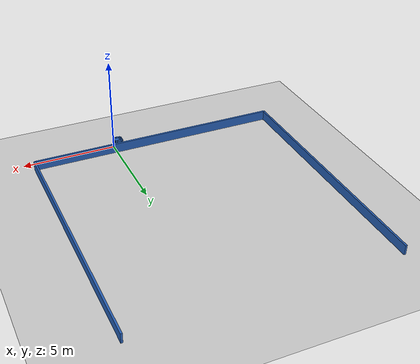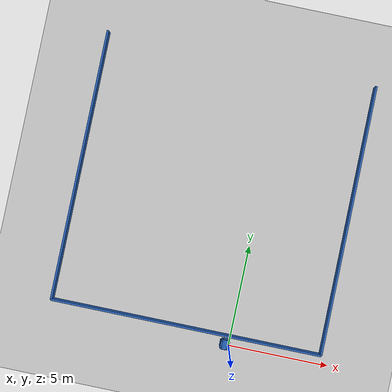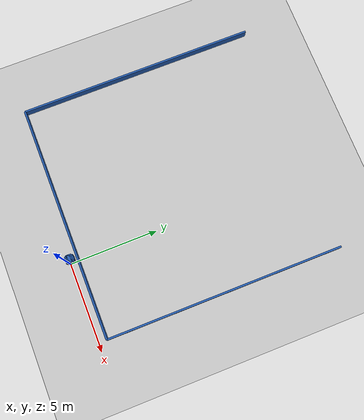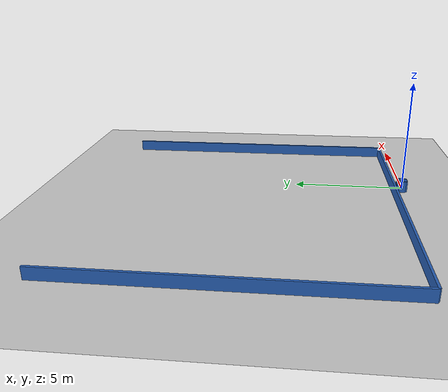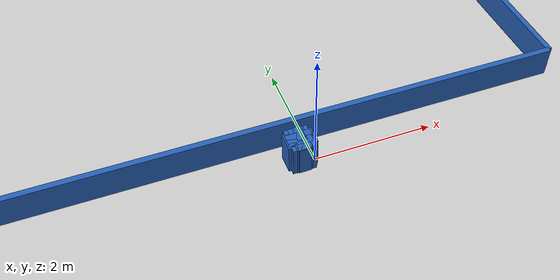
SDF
<?xml version="1.0" ?>
    <sdf version="1.5">
      <world name="default">
        <!-- A global light source -->
        <include>
          <uri>model://sun</uri>
        </include>
        <!-- A ground plane -->
        <include>
          <uri>model://ground_plane</uri>
        </include>

    <model name='libopen_space_final_T2B_96_0'>
      <static>1</static>
      <pose frame=''>-0.225000 0.075000 0.000000 0.000000 0.000000 0.000000</pose>
      <link name='link'>
        <inertial>
          <mass>1</mass>
          <inertia>
            <ixx>0.145833</ixx>
            <ixy>0</ixy>
            <ixz>0</ixz>
            <iyy>0.145833</iyy>
            <iyz>0</iyz>
            <izz>0.125</izz>
          </inertia>
        </inertial>
        <collision name='collision'>
          <geometry>
            <box>
              <size>0.19 0.30 1</size>
            </box>
          </geometry>
          <max_contacts>10</max_contacts>
          <surface>
            <contact>
              <ode/>
            </contact>
            <bounce/>
            <friction>
              <torsional>
                <ode/>
              </torsional>
              <ode/>
            </friction>
          </surface>
        </collision>
        <visual name='visual'>
          <geometry>
            <box>
              <size>0.19 0.30 1</size>
            </box>
          </geometry>
	    <material>
              <ambient>0.152000 0.379000 0.720000 1</ambient>
	      <diffuse>0.152000 0.379000 0.720000 1</diffuse>
          </material>
          <material>
            <script>
              <name>Gazebo/Grey</name>
              <uri>file://media/materials/scripts/gazebo.material</uri>
            </script>
          </material>
        </visual>
        <self_collide>0</self_collide>
        <kinematic>0</kinematic>
        <gravity>1</gravity>
      </link>
      <plugin name='libopen_space_final_T2B_96_0' filename='libopen_space_final_T2B_96_0.so'/>
    </model>

    <model name='libopen_space_final_T2B_83_17'>
      <static>1</static>
      <pose frame=''>-0.225000 0.075000 0.000000 0.000000 0.000000 0.000000</pose>
      <link name='link'>
        <inertial>
          <mass>1</mass>
          <inertia>
            <ixx>0.145833</ixx>
            <ixy>0</ixy>
            <ixz>0</ixz>
            <iyy>0.145833</iyy>
            <iyz>0</iyz>
            <izz>0.125</izz>
          </inertia>
        </inertial>
        <collision name='collision'>
          <geometry>
            <box>
              <size>0.39 0.46 1</size>
            </box>
          </geometry>
          <max_contacts>10</max_contacts>
          <surface>
            <contact>
              <ode/>
            </contact>
            <bounce/>
            <friction>
              <torsional>
                <ode/>
              </torsional>
              <ode/>
            </friction>
          </surface>
        </collision>
        <visual name='visual'>
          <geometry>
            <box>
              <size>0.39 0.46 1</size>
            </box>
          </geometry>
	    <material>
              <ambient>0.152000 0.379000 0.720000 1</ambient>
	      <diffuse>0.152000 0.379000 0.720000 1</diffuse>
          </material>
          <material>
            <script>
              <name>Gazebo/Grey</name>
              <uri>file://media/materials/scripts/gazebo.material</uri>
            </script>
          </material>
        </visual>
        <self_collide>0</self_collide>
        <kinematic>0</kinematic>
        <gravity>1</gravity>
      </link>
      <plugin name='libopen_space_final_T2B_83_17' filename='libopen_space_final_T2B_83_17.so'/>
    </model>

    <model name='libopen_space_final_T2B_120_90'>
      <static>1</static>
      <pose frame=''>-0.225000 0.075000 0.000000 0.000000 0.000000 0.000000</pose>
      <link name='link'>
        <inertial>
          <mass>1</mass>
          <inertia>
            <ixx>0.145833</ixx>
            <ixy>0</ixy>
            <ixz>0</ixz>
            <iyy>0.145833</iyy>
            <iyz>0</iyz>
            <izz>0.125</izz>
          </inertia>
        </inertial>
        <collision name='collision'>
          <geometry>
            <box>
              <size>0.40 0.16 1</size>
            </box>
          </geometry>
          <max_contacts>10</max_contacts>
          <surface>
            <contact>
              <ode/>
            </contact>
            <bounce/>
            <friction>
              <torsional>
                <ode/>
              </torsional>
              <ode/>
            </friction>
          </surface>
        </collision>
        <visual name='visual'>
          <geometry>
            <box>
              <size>0.40 0.16 1</size>
            </box>
          </geometry>
	    <material>
              <ambient>0.152000 0.379000 0.720000 1</ambient>
	      <diffuse>0.152000 0.379000 0.720000 1</diffuse>
          </material>
          <material>
            <script>
              <name>Gazebo/Grey</name>
              <uri>file://media/materials/scripts/gazebo.material</uri>
            </script>
          </material>
        </visual>
        <self_collide>0</self_collide>
        <kinematic>0</kinematic>
        <gravity>1</gravity>
      </link>
      <plugin name='libopen_space_final_T2B_120_90' filename='libopen_space_final_T2B_120_90.so'/>
    </model>

    <model name='libopen_space_final_T2B_79_93'>
      <static>1</static>
      <pose frame=''>-0.225000 0.075000 0.000000 0.000000 0.000000 0.000000</pose>
      <link name='link'>
        <inertial>
          <mass>1</mass>
          <inertia>
            <ixx>0.145833</ixx>
            <ixy>0</ixy>
            <ixz>0</ixz>
            <iyy>0.145833</iyy>
            <iyz>0</iyz>
            <izz>0.125</izz>
          </inertia>
        </inertial>
        <collision name='collision'>
          <geometry>
            <box>
              <size>0.43 0.11 1</size>
            </box>
          </geometry>
          <max_contacts>10</max_contacts>
          <surface>
            <contact>
              <ode/>
            </contact>
            <bounce/>
            <friction>
              <torsional>
                <ode/>
              </torsional>
              <ode/>
            </friction>
          </surface>
        </collision>
        <visual name='visual'>
          <geometry>
            <box>
              <size>0.43 0.11 1</size>
            </box>
          </geometry>
	    <material>
              <ambient>0.152000 0.379000 0.720000 1</ambient>
	      <diffuse>0.152000 0.379000 0.720000 1</diffuse>
          </material>
          <material>
            <script>
              <name>Gazebo/Grey</name>
              <uri>file://media/materials/scripts/gazebo.material</uri>
            </script>
          </material>
        </visual>
        <self_collide>0</self_collide>
        <kinematic>0</kinematic>
        <gravity>1</gravity>
      </link>
      <plugin name='libopen_space_final_T2B_79_93' filename='libopen_space_final_T2B_79_93.so'/>
    </model>

    <model name='libopen_space_final_T2B_90_15'>
      <static>1</static>
      <pose frame=''>-0.225000 0.075000 0.000000 0.000000 0.000000 0.000000</pose>
      <link name='link'>
        <inertial>
          <mass>1</mass>
          <inertia>
            <ixx>0.145833</ixx>
            <ixy>0</ixy>
            <ixz>0</ixz>
            <iyy>0.145833</iyy>
            <iyz>0</iyz>
            <izz>0.125</izz>
          </inertia>
        </inertial>
        <collision name='collision'>
          <geometry>
            <box>
              <size>0.48 0.31 1</size>
            </box>
          </geometry>
          <max_contacts>10</max_contacts>
          <surface>
            <contact>
              <ode/>
            </contact>
            <bounce/>
            <friction>
              <torsional>
                <ode/>
              </torsional>
              <ode/>
            </friction>
          </surface>
        </collision>
        <visual name='visual'>
          <geometry>
            <box>
              <size>0.48 0.31 1</size>
            </box>
          </geometry>
	    <material>
              <ambient>0.152000 0.379000 0.720000 1</ambient>
	      <diffuse>0.152000 0.379000 0.720000 1</diffuse>
          </material>
          <material>
            <script>
              <name>Gazebo/Grey</name>
              <uri>file://media/materials/scripts/gazebo.material</uri>
            </script>
          </material>
        </visual>
        <self_collide>0</self_collide>
        <kinematic>0</kinematic>
        <gravity>1</gravity>
      </link>
      <plugin name='libopen_space_final_T2B_90_15' filename='libopen_space_final_T2B_90_15.so'/>
    </model>

    <model name='libopen_space_final_T2B_115_24'>
      <static>1</static>
      <pose frame=''>-0.225000 0.075000 0.000000 0.000000 0.000000 0.000000</pose>
      <link name='link'>
        <inertial>
          <mass>1</mass>
          <inertia>
            <ixx>0.145833</ixx>
            <ixy>0</ixy>
            <ixz>0</ixz>
            <iyy>0.145833</iyy>
            <iyz>0</iyz>
            <izz>0.125</izz>
          </inertia>
        </inertial>
        <collision name='collision'>
          <geometry>
            <box>
              <size>0.42 0.25 1</size>
            </box>
          </geometry>
          <max_contacts>10</max_contacts>
          <surface>
            <contact>
              <ode/>
            </contact>
            <bounce/>
            <friction>
              <torsional>
                <ode/>
              </torsional>
              <ode/>
            </friction>
          </surface>
        </collision>
        <visual name='visual'>
          <geometry>
            <box>
              <size>0.42 0.25 1</size>
            </box>
          </geometry>
	    <material>
              <ambient>0.152000 0.379000 0.720000 1</ambient>
	      <diffuse>0.152000 0.379000 0.720000 1</diffuse>
          </material>
          <material>
            <script>
              <name>Gazebo/Grey</name>
              <uri>file://media/materials/scripts/gazebo.material</uri>
            </script>
          </material>
        </visual>
        <self_collide>0</self_collide>
        <kinematic>0</kinematic>
        <gravity>1</gravity>
      </link>
      <plugin name='libopen_space_final_T2B_115_24' filename='libopen_space_final_T2B_115_24.so'/>
    </model>

    <model name='libopen_space_final_T2B_85_42'>
      <static>1</static>
      <pose frame=''>-0.225000 0.075000 0.000000 0.000000 0.000000 0.000000</pose>
      <link name='link'>
        <inertial>
          <mass>1</mass>
          <inertia>
            <ixx>0.145833</ixx>
            <ixy>0</ixy>
            <ixz>0</ixz>
            <iyy>0.145833</iyy>
            <iyz>0</iyz>
            <izz>0.125</izz>
          </inertia>
        </inertial>
        <collision name='collision'>
          <geometry>
            <box>
              <size>0.25 0.47 1</size>
            </box>
          </geometry>
          <max_contacts>10</max_contacts>
          <surface>
            <contact>
              <ode/>
            </contact>
            <bounce/>
            <friction>
              <torsional>
                <ode/>
              </torsional>
              <ode/>
            </friction>
          </surface>
        </collision>
        <visual name='visual'>
          <geometry>
            <box>
              <size>0.25 0.47 1</size>
            </box>
          </geometry>
	    <material>
              <ambient>0.152000 0.379000 0.720000 1</ambient>
	      <diffuse>0.152000 0.379000 0.720000 1</diffuse>
          </material>
          <material>
            <script>
              <name>Gazebo/Grey</name>
              <uri>file://media/materials/scripts/gazebo.material</uri>
            </script>
          </material>
        </visual>
        <self_collide>0</self_collide>
        <kinematic>0</kinematic>
        <gravity>1</gravity>
      </link>
      <plugin name='libopen_space_final_T2B_85_42' filename='libopen_space_final_T2B_85_42.so'/>
    </model>

    <model name='libopen_space_final_T2B_73_55'>
      <static>1</static>
      <pose frame=''>-0.225000 0.075000 0.000000 0.000000 0.000000 0.000000</pose>
      <link name='link'>
        <inertial>
          <mass>1</mass>
          <inertia>
            <ixx>0.145833</ixx>
            <ixy>0</ixy>
            <ixz>0</ixz>
            <iyy>0.145833</iyy>
            <iyz>0</iyz>
            <izz>0.125</izz>
          </inertia>
        </inertial>
        <collision name='collision'>
          <geometry>
            <box>
              <size>0.37 0.23 1</size>
            </box>
          </geometry>
          <max_contacts>10</max_contacts>
          <surface>
            <contact>
              <ode/>
            </contact>
            <bounce/>
            <friction>
              <torsional>
                <ode/>
              </torsional>
              <ode/>
            </friction>
          </surface>
        </collision>
        <visual name='visual'>
          <geometry>
            <box>
              <size>0.37 0.23 1</size>
            </box>
          </geometry>
	    <material>
              <ambient>0.152000 0.379000 0.720000 1</ambient>
	      <diffuse>0.152000 0.379000 0.720000 1</diffuse>
          </material>
          <material>
            <script>
              <name>Gazebo/Grey</name>
              <uri>file://media/materials/scripts/gazebo.material</uri>
            </script>
          </material>
        </visual>
        <self_collide>0</self_collide>
        <kinematic>0</kinematic>
        <gravity>1</gravity>
      </link>
      <plugin name='libopen_space_final_T2B_73_55' filename='libopen_space_final_T2B_73_55.so'/>
    </model>

    <model name='libopen_space_final_T2B_73_39'>
      <static>1</static>
      <pose frame=''>-0.225000 0.075000 0.000000 0.000000 0.000000 0.000000</pose>
      <link name='link'>
        <inertial>
          <mass>1</mass>
          <inertia>
            <ixx>0.145833</ixx>
            <ixy>0</ixy>
            <ixz>0</ixz>
            <iyy>0.145833</iyy>
            <iyz>0</iyz>
            <izz>0.125</izz>
          </inertia>
        </inertial>
        <collision name='collision'>
          <geometry>
            <box>
              <size>0.42 0.28 1</size>
            </box>
          </geometry>
          <max_contacts>10</max_contacts>
          <surface>
            <contact>
              <ode/>
            </contact>
            <bounce/>
            <friction>
              <torsional>
                <ode/>
              </torsional>
              <ode/>
            </friction>
          </surface>
        </collision>
        <visual name='visual'>
          <geometry>
            <box>
              <size>0.42 0.28 1</size>
            </box>
          </geometry>
	    <material>
              <ambient>0.152000 0.379000 0.720000 1</ambient>
	      <diffuse>0.152000 0.379000 0.720000 1</diffuse>
          </material>
          <material>
            <script>
              <name>Gazebo/Grey</name>
              <uri>file://media/materials/scripts/gazebo.material</uri>
            </script>
          </material>
        </visual>
        <self_collide>0</self_collide>
        <kinematic>0</kinematic>
        <gravity>1</gravity>
      </link>
      <plugin name='libopen_space_final_T2B_73_39' filename='libopen_space_final_T2B_73_39.so'/>
    </model>

    <model name='libopen_space_final_T2B_141_33'>
      <static>1</static>
      <pose frame=''>-0.225000 0.075000 0.000000 0.000000 0.000000 0.000000</pose>
      <link name='link'>
        <inertial>
          <mass>1</mass>
          <inertia>
            <ixx>0.145833</ixx>
            <ixy>0</ixy>
            <ixz>0</ixz>
            <iyy>0.145833</iyy>
            <iyz>0</iyz>
            <izz>0.125</izz>
          </inertia>
        </inertial>
        <collision name='collision'>
          <geometry>
            <box>
              <size>0.20 0.49 1</size>
            </box>
          </geometry>
          <max_contacts>10</max_contacts>
          <surface>
            <contact>
              <ode/>
            </contact>
            <bounce/>
            <friction>
              <torsional>
                <ode/>
              </torsional>
              <ode/>
            </friction>
          </surface>
        </collision>
        <visual name='visual'>
          <geometry>
            <box>
              <size>0.20 0.49 1</size>
            </box>
          </geometry>
	    <material>
              <ambient>0.152000 0.379000 0.720000 1</ambient>
	      <diffuse>0.152000 0.379000 0.720000 1</diffuse>
          </material>
          <material>
            <script>
              <name>Gazebo/Grey</name>
              <uri>file://media/materials/scripts/gazebo.material</uri>
            </script>
          </material>
        </visual>
        <self_collide>0</self_collide>
        <kinematic>0</kinematic>
        <gravity>1</gravity>
      </link>
      <plugin name='libopen_space_final_T2B_141_33' filename='libopen_space_final_T2B_141_33.so'/>
    </model>

        <model name='bottom_wall'>
          <static>1</static>
          <pose frame=''>-2.25 0.5 0.000000 0.000000 0.000000 1.57079632</pose>
          <link name='link'>
            <inertial>
            <mass>1</mass>
            <inertia>
              <ixx>0.145833</ixx>
              <ixy>0</ixy>
              <ixz>0</ixz>
              <iyy>0.145833</iyy>
              <iyz>0</iyz>
              <izz>0.125</izz>
            </inertia>
            </inertial>
            <collision name='collision'>
            <geometry>
              <box>
              <size>0.1 13.5 1</size>
              </box>
            </geometry>
            <max_contacts>10</max_contacts>
            <surface>
              <contact>
              <ode/>
              </contact>
              <bounce/>
              <friction>
              <torsional>
                <ode/>
              </torsional>
              <ode/>
              </friction>
            </surface>
            </collision>
            <visual name='visual'>
            <geometry>
              <box>
              <size>0.1 13.5 1</size>
              </box>
            </geometry>
            <material>
              <ambient>0.152000 0.379000 0.720000 1</ambient>
            <diffuse>0.152000 0.379000 0.720000 1</diffuse>
            </material>
            <material>
              <script>
              <name>Gazebo/Grey</name>
              <uri>file://media/materials/scripts/gazebo.material</uri>
              </script>
            </material>
            </visual>
            <self_collide>0</self_collide>
            <kinematic>0</kinematic>
            <gravity>1</gravity>
          </link>
        </model>

        <model name='left_wall'>
          <static>1</static>
          <pose frame=''>-9 7.25 0.000000 0.000000 0.000000 0.000000</pose>
          <link name='link'>
            <inertial>
            <mass>1</mass>
            <inertia>
              <ixx>0.145833</ixx>
              <ixy>0</ixy>
              <ixz>0</ixz>
              <iyy>0.145833</iyy>
              <iyz>0</iyz>
              <izz>0.125</izz>
            </inertia>
            </inertial>
            <collision name='collision'>
            <geometry>
              <box>
              <size>0.1 13.5 1</size>
              </box>
            </geometry>
            <max_contacts>10</max_contacts>
            <surface>
              <contact>
              <ode/>
              </contact>
              <bounce/>
              <friction>
              <torsional>
                <ode/>
              </torsional>
              <ode/>
              </friction>
            </surface>
            </collision>
            <visual name='visual'>
            <geometry>
              <box>
              <size>0.1 13.5 1</size>
              </box>
            </geometry>
            <material>
              <ambient>0.152000 0.379000 0.720000 1</ambient>
            <diffuse>0.152000 0.379000 0.720000 1</diffuse>
            </material>
            <material>
              <script>
              <name>Gazebo/Grey</name>
              <uri>file://media/materials/scripts/gazebo.material</uri>
              </script>
            </material>
            </visual>
            <self_collide>0</self_collide>
            <kinematic>0</kinematic>
            <gravity>1</gravity>
          </link>
        </model>

        <model name='right_wall'>
          <static>1</static>
          <pose frame=''>4.5 7.25 0.000000 0.000000 0.000000 0.000000</pose>
          <link name='link'>
            <inertial>
            <mass>1</mass>
            <inertia>
              <ixx>0.145833</ixx>
              <ixy>0</ixy>
              <ixz>0</ixz>
              <iyy>0.145833</iyy>
              <iyz>0</iyz>
              <izz>0.125</izz>
            </inertia>
            </inertial>
            <collision name='collision'>
            <geometry>
              <box>
              <size>0.1 13.5 1</size>
              </box>
            </geometry>
            <max_contacts>10</max_contacts>
            <surface>
              <contact>
              <ode/>
              </contact>
              <bounce/>
              <friction>
              <torsional>
                <ode/>
              </torsional>
              <ode/>
              </friction>
            </surface>
            </collision>
            <visual name='visual'>
            <geometry>
              <box>
              <size>0.1 13.5 1</size>
              </box>
            </geometry>
            <material>
              <ambient>0.152000 0.379000 0.720000 1</ambient>
            <diffuse>0.152000 0.379000 0.720000 1</diffuse>
            </material>
            <material>
              <script>
              <name>Gazebo/Grey</name>
              <uri>file://media/materials/scripts/gazebo.material</uri>
              </script>
            </material>
            </visual>
            <self_collide>0</self_collide>
            <kinematic>0</kinematic>
            <gravity>1</gravity>
          </link>
        </model>

      </world>
    </sdf>"
